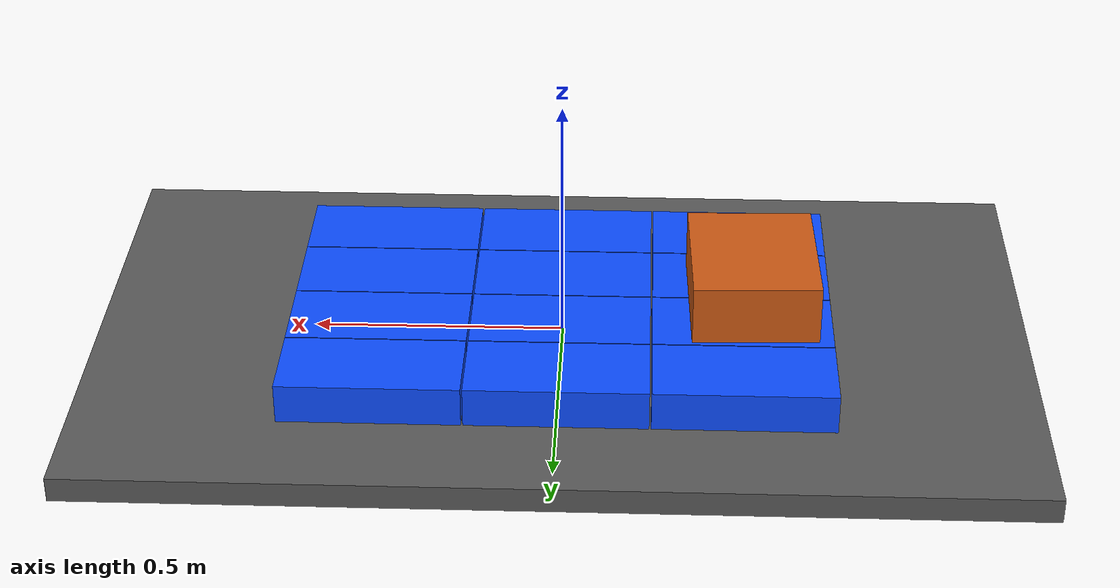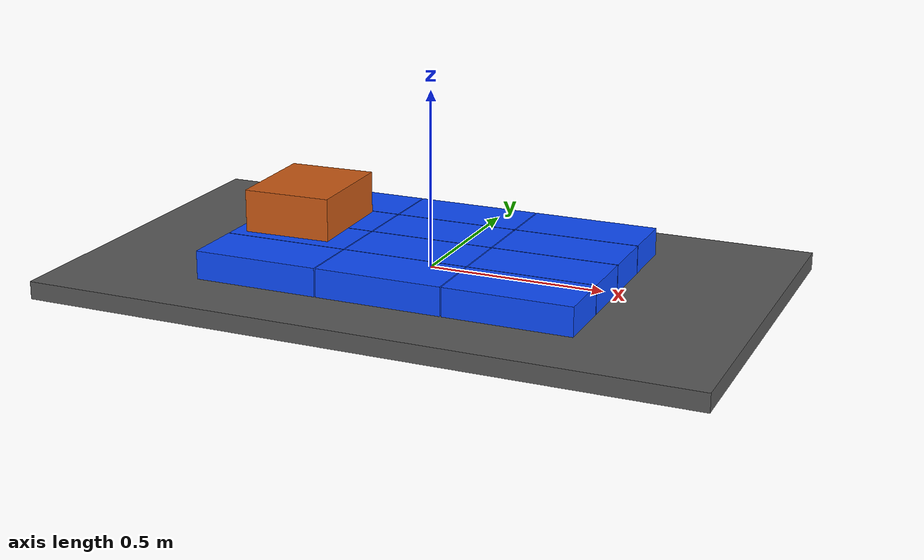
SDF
<?xml version="1.0"?>
<sdf version="1.10">

  <world name="matrix_3x4">

    <gravity>0 0 -9.81</gravity>

    <physics name="physics_1ms" type="ignored">
      <max_step_size>0.001</max_step_size>
      <real_time_factor>1.0</real_time_factor>
      <real_time_update_rate>1000</real_time_update_rate>
    </physics>

    <plugin
      filename="gz-sim-physics-system"
      name="gz::sim::systems::Physics"/>

    <plugin
      filename="gz-sim-user-commands-system"
      name="gz::sim::systems::UserCommands"/>

    <plugin
      filename="gz-sim-scene-broadcaster-system"
      name="gz::sim::systems::SceneBroadcaster"/>

    <light type="directional" name="sun">
      <pose>0 0 5 0 0 0</pose>

      <cast_shadows>true</cast_shadows>

      <diffuse>0.9 0.9 0.9 1</diffuse>
      <specular>0.2 0.2 0.2 1</specular>

      <direction>-0.3 0.2 -1.0</direction>
    </light>

    <model name="platform">
      <static>true</static>

      <pose>0 0 -0.025 0 0 0</pose>

      <link name="platform_link">

        <collision name="platform_collision">
          <geometry>
            <box>
              <size>1.8800000000000001 1.1 0.05</size>
            </box>
          </geometry>
        </collision>

        <visual name="platform_visual">
          <geometry>
            <box>
              <size>1.8800000000000001 1.1 0.05</size>
            </box>
          </geometry>

          <material>
            <ambient>0.22 0.22 0.22 1</ambient>
            <diffuse>0.35 0.35 0.35 1</diffuse>
          </material>
        </visual>

      </link>
    </model>

    <model name="cell_r00_c00">
      <static>true</static>

      <pose>-0.360000 -0.262500 0 0 0 0</pose>

      <link name="belt">
        <pose>0 0 0.040000 0 0 0</pose>

        <collision name="belt_collision">
          <geometry>
            <box>
              <size>
                0.3563 0.17275 0.08
              </size>
            </box>
          </geometry>

          <surface>
            <friction>
              <ode>
                <mu>0.7</mu>
                <mu2>0.7</mu2>
                <fdir1>1 0 0</fdir1>
              </ode>
            </friction>
          </surface>
        </collision>

        <visual name="belt_visual">
          <geometry>
            <box>
              <size>
                0.3563 0.17275 0.08
              </size>
            </box>
          </geometry>

          <material>
            <ambient>0.04 0.18 0.70 1</ambient>
            <diffuse>0.05 0.30 1.00 1</diffuse>
          </material>
        </visual>
      </link>

      <plugin
        filename="gz-sim-track-controller-system"
        name="gz::sim::systems::TrackController">

        <link>belt</link>

        <!-- Положительная скорость направлена вдоль +X -->
        <track_orientation>0 0 0</track_orientation>

        <velocity_topic>
          /singulator/cell/r00_c00/cmd_vel
        </velocity_topic>

        <odometry_topic>
          /singulator/cell/r00_c00/odometry
        </odometry_topic>

        <odometry_publish_frequency>
          20
        </odometry_publish_frequency>

        <min_velocity>-2.0</min_velocity>
        <max_velocity>2.0</max_velocity>

        <min_acceleration>-2.5</min_acceleration>
        <max_acceleration>2.5</max_acceleration>

        <min_jerk>-10.0</min_jerk>
        <max_jerk>10.0</max_jerk>

        <max_command_age>
          2.0
        </max_command_age>
      </plugin>
    </model>

    <model name="cell_r00_c01">
      <static>true</static>

      <pose>-0.360000 -0.087500 0 0 0 0</pose>

      <link name="belt">
        <pose>0 0 0.040000 0 0 0</pose>

        <collision name="belt_collision">
          <geometry>
            <box>
              <size>
                0.3563 0.17275 0.08
              </size>
            </box>
          </geometry>

          <surface>
            <friction>
              <ode>
                <mu>0.7</mu>
                <mu2>0.7</mu2>
                <fdir1>1 0 0</fdir1>
              </ode>
            </friction>
          </surface>
        </collision>

        <visual name="belt_visual">
          <geometry>
            <box>
              <size>
                0.3563 0.17275 0.08
              </size>
            </box>
          </geometry>

          <material>
            <ambient>0.04 0.18 0.70 1</ambient>
            <diffuse>0.05 0.30 1.00 1</diffuse>
          </material>
        </visual>
      </link>

      <plugin
        filename="gz-sim-track-controller-system"
        name="gz::sim::systems::TrackController">

        <link>belt</link>

        <!-- Положительная скорость направлена вдоль +X -->
        <track_orientation>0 0 0</track_orientation>

        <velocity_topic>
          /singulator/cell/r00_c01/cmd_vel
        </velocity_topic>

        <odometry_topic>
          /singulator/cell/r00_c01/odometry
        </odometry_topic>

        <odometry_publish_frequency>
          20
        </odometry_publish_frequency>

        <min_velocity>-2.0</min_velocity>
        <max_velocity>2.0</max_velocity>

        <min_acceleration>-2.5</min_acceleration>
        <max_acceleration>2.5</max_acceleration>

        <min_jerk>-10.0</min_jerk>
        <max_jerk>10.0</max_jerk>

        <max_command_age>
          2.0
        </max_command_age>
      </plugin>
    </model>

    <model name="cell_r00_c02">
      <static>true</static>

      <pose>-0.360000 0.087500 0 0 0 0</pose>

      <link name="belt">
        <pose>0 0 0.040000 0 0 0</pose>

        <collision name="belt_collision">
          <geometry>
            <box>
              <size>
                0.3563 0.17275 0.08
              </size>
            </box>
          </geometry>

          <surface>
            <friction>
              <ode>
                <mu>0.7</mu>
                <mu2>0.7</mu2>
                <fdir1>1 0 0</fdir1>
              </ode>
            </friction>
          </surface>
        </collision>

        <visual name="belt_visual">
          <geometry>
            <box>
              <size>
                0.3563 0.17275 0.08
              </size>
            </box>
          </geometry>

          <material>
            <ambient>0.04 0.18 0.70 1</ambient>
            <diffuse>0.05 0.30 1.00 1</diffuse>
          </material>
        </visual>
      </link>

      <plugin
        filename="gz-sim-track-controller-system"
        name="gz::sim::systems::TrackController">

        <link>belt</link>

        <!-- Положительная скорость направлена вдоль +X -->
        <track_orientation>0 0 0</track_orientation>

        <velocity_topic>
          /singulator/cell/r00_c02/cmd_vel
        </velocity_topic>

        <odometry_topic>
          /singulator/cell/r00_c02/odometry
        </odometry_topic>

        <odometry_publish_frequency>
          20
        </odometry_publish_frequency>

        <min_velocity>-2.0</min_velocity>
        <max_velocity>2.0</max_velocity>

        <min_acceleration>-2.5</min_acceleration>
        <max_acceleration>2.5</max_acceleration>

        <min_jerk>-10.0</min_jerk>
        <max_jerk>10.0</max_jerk>

        <max_command_age>
          2.0
        </max_command_age>
      </plugin>
    </model>

    <model name="cell_r00_c03">
      <static>true</static>

      <pose>-0.360000 0.262500 0 0 0 0</pose>

      <link name="belt">
        <pose>0 0 0.040000 0 0 0</pose>

        <collision name="belt_collision">
          <geometry>
            <box>
              <size>
                0.3563 0.17275 0.08
              </size>
            </box>
          </geometry>

          <surface>
            <friction>
              <ode>
                <mu>0.7</mu>
                <mu2>0.7</mu2>
                <fdir1>1 0 0</fdir1>
              </ode>
            </friction>
          </surface>
        </collision>

        <visual name="belt_visual">
          <geometry>
            <box>
              <size>
                0.3563 0.17275 0.08
              </size>
            </box>
          </geometry>

          <material>
            <ambient>0.04 0.18 0.70 1</ambient>
            <diffuse>0.05 0.30 1.00 1</diffuse>
          </material>
        </visual>
      </link>

      <plugin
        filename="gz-sim-track-controller-system"
        name="gz::sim::systems::TrackController">

        <link>belt</link>

        <!-- Положительная скорость направлена вдоль +X -->
        <track_orientation>0 0 0</track_orientation>

        <velocity_topic>
          /singulator/cell/r00_c03/cmd_vel
        </velocity_topic>

        <odometry_topic>
          /singulator/cell/r00_c03/odometry
        </odometry_topic>

        <odometry_publish_frequency>
          20
        </odometry_publish_frequency>

        <min_velocity>-2.0</min_velocity>
        <max_velocity>2.0</max_velocity>

        <min_acceleration>-2.5</min_acceleration>
        <max_acceleration>2.5</max_acceleration>

        <min_jerk>-10.0</min_jerk>
        <max_jerk>10.0</max_jerk>

        <max_command_age>
          2.0
        </max_command_age>
      </plugin>
    </model>

    <model name="cell_r01_c00">
      <static>true</static>

      <pose>0.000000 -0.262500 0 0 0 0</pose>

      <link name="belt">
        <pose>0 0 0.040000 0 0 0</pose>

        <collision name="belt_collision">
          <geometry>
            <box>
              <size>
                0.3563 0.17275 0.08
              </size>
            </box>
          </geometry>

          <surface>
            <friction>
              <ode>
                <mu>0.7</mu>
                <mu2>0.7</mu2>
                <fdir1>1 0 0</fdir1>
              </ode>
            </friction>
          </surface>
        </collision>

        <visual name="belt_visual">
          <geometry>
            <box>
              <size>
                0.3563 0.17275 0.08
              </size>
            </box>
          </geometry>

          <material>
            <ambient>0.04 0.18 0.70 1</ambient>
            <diffuse>0.05 0.30 1.00 1</diffuse>
          </material>
        </visual>
      </link>

      <plugin
        filename="gz-sim-track-controller-system"
        name="gz::sim::systems::TrackController">

        <link>belt</link>

        <!-- Положительная скорость направлена вдоль +X -->
        <track_orientation>0 0 0</track_orientation>

        <velocity_topic>
          /singulator/cell/r01_c00/cmd_vel
        </velocity_topic>

        <odometry_topic>
          /singulator/cell/r01_c00/odometry
        </odometry_topic>

        <odometry_publish_frequency>
          20
        </odometry_publish_frequency>

        <min_velocity>-2.0</min_velocity>
        <max_velocity>2.0</max_velocity>

        <min_acceleration>-2.5</min_acceleration>
        <max_acceleration>2.5</max_acceleration>

        <min_jerk>-10.0</min_jerk>
        <max_jerk>10.0</max_jerk>

        <max_command_age>
          2.0
        </max_command_age>
      </plugin>
    </model>

    <model name="cell_r01_c01">
      <static>true</static>

      <pose>0.000000 -0.087500 0 0 0 0</pose>

      <link name="belt">
        <pose>0 0 0.040000 0 0 0</pose>

        <collision name="belt_collision">
          <geometry>
            <box>
              <size>
                0.3563 0.17275 0.08
              </size>
            </box>
          </geometry>

          <surface>
            <friction>
              <ode>
                <mu>0.7</mu>
                <mu2>0.7</mu2>
                <fdir1>1 0 0</fdir1>
              </ode>
            </friction>
          </surface>
        </collision>

        <visual name="belt_visual">
          <geometry>
            <box>
              <size>
                0.3563 0.17275 0.08
              </size>
            </box>
          </geometry>

          <material>
            <ambient>0.04 0.18 0.70 1</ambient>
            <diffuse>0.05 0.30 1.00 1</diffuse>
          </material>
        </visual>
      </link>

      <plugin
        filename="gz-sim-track-controller-system"
        name="gz::sim::systems::TrackController">

        <link>belt</link>

        <!-- Положительная скорость направлена вдоль +X -->
        <track_orientation>0 0 0</track_orientation>

        <velocity_topic>
          /singulator/cell/r01_c01/cmd_vel
        </velocity_topic>

        <odometry_topic>
          /singulator/cell/r01_c01/odometry
        </odometry_topic>

        <odometry_publish_frequency>
          20
        </odometry_publish_frequency>

        <min_velocity>-2.0</min_velocity>
        <max_velocity>2.0</max_velocity>

        <min_acceleration>-2.5</min_acceleration>
        <max_acceleration>2.5</max_acceleration>

        <min_jerk>-10.0</min_jerk>
        <max_jerk>10.0</max_jerk>

        <max_command_age>
          2.0
        </max_command_age>
      </plugin>
    </model>

    <model name="cell_r01_c02">
      <static>true</static>

      <pose>0.000000 0.087500 0 0 0 0</pose>

      <link name="belt">
        <pose>0 0 0.040000 0 0 0</pose>

        <collision name="belt_collision">
          <geometry>
            <box>
              <size>
                0.3563 0.17275 0.08
              </size>
            </box>
          </geometry>

          <surface>
            <friction>
              <ode>
                <mu>0.7</mu>
                <mu2>0.7</mu2>
                <fdir1>1 0 0</fdir1>
              </ode>
            </friction>
          </surface>
        </collision>

        <visual name="belt_visual">
          <geometry>
            <box>
              <size>
                0.3563 0.17275 0.08
              </size>
            </box>
          </geometry>

          <material>
            <ambient>0.04 0.18 0.70 1</ambient>
            <diffuse>0.05 0.30 1.00 1</diffuse>
          </material>
        </visual>
      </link>

      <plugin
        filename="gz-sim-track-controller-system"
        name="gz::sim::systems::TrackController">

        <link>belt</link>

        <!-- Положительная скорость направлена вдоль +X -->
        <track_orientation>0 0 0</track_orientation>

        <velocity_topic>
          /singulator/cell/r01_c02/cmd_vel
        </velocity_topic>

        <odometry_topic>
          /singulator/cell/r01_c02/odometry
        </odometry_topic>

        <odometry_publish_frequency>
          20
        </odometry_publish_frequency>

        <min_velocity>-2.0</min_velocity>
        <max_velocity>2.0</max_velocity>

        <min_acceleration>-2.5</min_acceleration>
        <max_acceleration>2.5</max_acceleration>

        <min_jerk>-10.0</min_jerk>
        <max_jerk>10.0</max_jerk>

        <max_command_age>
          2.0
        </max_command_age>
      </plugin>
    </model>

    <model name="cell_r01_c03">
      <static>true</static>

      <pose>0.000000 0.262500 0 0 0 0</pose>

      <link name="belt">
        <pose>0 0 0.040000 0 0 0</pose>

        <collision name="belt_collision">
          <geometry>
            <box>
              <size>
                0.3563 0.17275 0.08
              </size>
            </box>
          </geometry>

          <surface>
            <friction>
              <ode>
                <mu>0.7</mu>
                <mu2>0.7</mu2>
                <fdir1>1 0 0</fdir1>
              </ode>
            </friction>
          </surface>
        </collision>

        <visual name="belt_visual">
          <geometry>
            <box>
              <size>
                0.3563 0.17275 0.08
              </size>
            </box>
          </geometry>

          <material>
            <ambient>0.04 0.18 0.70 1</ambient>
            <diffuse>0.05 0.30 1.00 1</diffuse>
          </material>
        </visual>
      </link>

      <plugin
        filename="gz-sim-track-controller-system"
        name="gz::sim::systems::TrackController">

        <link>belt</link>

        <!-- Положительная скорость направлена вдоль +X -->
        <track_orientation>0 0 0</track_orientation>

        <velocity_topic>
          /singulator/cell/r01_c03/cmd_vel
        </velocity_topic>

        <odometry_topic>
          /singulator/cell/r01_c03/odometry
        </odometry_topic>

        <odometry_publish_frequency>
          20
        </odometry_publish_frequency>

        <min_velocity>-2.0</min_velocity>
        <max_velocity>2.0</max_velocity>

        <min_acceleration>-2.5</min_acceleration>
        <max_acceleration>2.5</max_acceleration>

        <min_jerk>-10.0</min_jerk>
        <max_jerk>10.0</max_jerk>

        <max_command_age>
          2.0
        </max_command_age>
      </plugin>
    </model>

    <model name="cell_r02_c00">
      <static>true</static>

      <pose>0.360000 -0.262500 0 0 0 0</pose>

      <link name="belt">
        <pose>0 0 0.040000 0 0 0</pose>

        <collision name="belt_collision">
          <geometry>
            <box>
              <size>
                0.3563 0.17275 0.08
              </size>
            </box>
          </geometry>

          <surface>
            <friction>
              <ode>
                <mu>0.7</mu>
                <mu2>0.7</mu2>
                <fdir1>1 0 0</fdir1>
              </ode>
            </friction>
          </surface>
        </collision>

        <visual name="belt_visual">
          <geometry>
            <box>
              <size>
                0.3563 0.17275 0.08
              </size>
            </box>
          </geometry>

          <material>
            <ambient>0.04 0.18 0.70 1</ambient>
            <diffuse>0.05 0.30 1.00 1</diffuse>
          </material>
        </visual>
      </link>

      <plugin
        filename="gz-sim-track-controller-system"
        name="gz::sim::systems::TrackController">

        <link>belt</link>

        <!-- Положительная скорость направлена вдоль +X -->
        <track_orientation>0 0 0</track_orientation>

        <velocity_topic>
          /singulator/cell/r02_c00/cmd_vel
        </velocity_topic>

        <odometry_topic>
          /singulator/cell/r02_c00/odometry
        </odometry_topic>

        <odometry_publish_frequency>
          20
        </odometry_publish_frequency>

        <min_velocity>-2.0</min_velocity>
        <max_velocity>2.0</max_velocity>

        <min_acceleration>-2.5</min_acceleration>
        <max_acceleration>2.5</max_acceleration>

        <min_jerk>-10.0</min_jerk>
        <max_jerk>10.0</max_jerk>

        <max_command_age>
          2.0
        </max_command_age>
      </plugin>
    </model>

    <model name="cell_r02_c01">
      <static>true</static>

      <pose>0.360000 -0.087500 0 0 0 0</pose>

      <link name="belt">
        <pose>0 0 0.040000 0 0 0</pose>

        <collision name="belt_collision">
          <geometry>
            <box>
              <size>
                0.3563 0.17275 0.08
              </size>
            </box>
          </geometry>

          <surface>
            <friction>
              <ode>
                <mu>0.7</mu>
                <mu2>0.7</mu2>
                <fdir1>1 0 0</fdir1>
              </ode>
            </friction>
          </surface>
        </collision>

        <visual name="belt_visual">
          <geometry>
            <box>
              <size>
                0.3563 0.17275 0.08
              </size>
            </box>
          </geometry>

          <material>
            <ambient>0.04 0.18 0.70 1</ambient>
            <diffuse>0.05 0.30 1.00 1</diffuse>
          </material>
        </visual>
      </link>

      <plugin
        filename="gz-sim-track-controller-system"
        name="gz::sim::systems::TrackController">

        <link>belt</link>

        <!-- Положительная скорость направлена вдоль +X -->
        <track_orientation>0 0 0</track_orientation>

        <velocity_topic>
          /singulator/cell/r02_c01/cmd_vel
        </velocity_topic>

        <odometry_topic>
          /singulator/cell/r02_c01/odometry
        </odometry_topic>

        <odometry_publish_frequency>
          20
        </odometry_publish_frequency>

        <min_velocity>-2.0</min_velocity>
        <max_velocity>2.0</max_velocity>

        <min_acceleration>-2.5</min_acceleration>
        <max_acceleration>2.5</max_acceleration>

        <min_jerk>-10.0</min_jerk>
        <max_jerk>10.0</max_jerk>

        <max_command_age>
          2.0
        </max_command_age>
      </plugin>
    </model>

    <model name="cell_r02_c02">
      <static>true</static>

      <pose>0.360000 0.087500 0 0 0 0</pose>

      <link name="belt">
        <pose>0 0 0.040000 0 0 0</pose>

        <collision name="belt_collision">
          <geometry>
            <box>
              <size>
                0.3563 0.17275 0.08
              </size>
            </box>
          </geometry>

          <surface>
            <friction>
              <ode>
                <mu>0.7</mu>
                <mu2>0.7</mu2>
                <fdir1>1 0 0</fdir1>
              </ode>
            </friction>
          </surface>
        </collision>

        <visual name="belt_visual">
          <geometry>
            <box>
              <size>
                0.3563 0.17275 0.08
              </size>
            </box>
          </geometry>

          <material>
            <ambient>0.04 0.18 0.70 1</ambient>
            <diffuse>0.05 0.30 1.00 1</diffuse>
          </material>
        </visual>
      </link>

      <plugin
        filename="gz-sim-track-controller-system"
        name="gz::sim::systems::TrackController">

        <link>belt</link>

        <!-- Положительная скорость направлена вдоль +X -->
        <track_orientation>0 0 0</track_orientation>

        <velocity_topic>
          /singulator/cell/r02_c02/cmd_vel
        </velocity_topic>

        <odometry_topic>
          /singulator/cell/r02_c02/odometry
        </odometry_topic>

        <odometry_publish_frequency>
          20
        </odometry_publish_frequency>

        <min_velocity>-2.0</min_velocity>
        <max_velocity>2.0</max_velocity>

        <min_acceleration>-2.5</min_acceleration>
        <max_acceleration>2.5</max_acceleration>

        <min_jerk>-10.0</min_jerk>
        <max_jerk>10.0</max_jerk>

        <max_command_age>
          2.0
        </max_command_age>
      </plugin>
    </model>

    <model name="cell_r02_c03">
      <static>true</static>

      <pose>0.360000 0.262500 0 0 0 0</pose>

      <link name="belt">
        <pose>0 0 0.040000 0 0 0</pose>

        <collision name="belt_collision">
          <geometry>
            <box>
              <size>
                0.3563 0.17275 0.08
              </size>
            </box>
          </geometry>

          <surface>
            <friction>
              <ode>
                <mu>0.7</mu>
                <mu2>0.7</mu2>
                <fdir1>1 0 0</fdir1>
              </ode>
            </friction>
          </surface>
        </collision>

        <visual name="belt_visual">
          <geometry>
            <box>
              <size>
                0.3563 0.17275 0.08
              </size>
            </box>
          </geometry>

          <material>
            <ambient>0.04 0.18 0.70 1</ambient>
            <diffuse>0.05 0.30 1.00 1</diffuse>
          </material>
        </visual>
      </link>

      <plugin
        filename="gz-sim-track-controller-system"
        name="gz::sim::systems::TrackController">

        <link>belt</link>

        <!-- Положительная скорость направлена вдоль +X -->
        <track_orientation>0 0 0</track_orientation>

        <velocity_topic>
          /singulator/cell/r02_c03/cmd_vel
        </velocity_topic>

        <odometry_topic>
          /singulator/cell/r02_c03/odometry
        </odometry_topic>

        <odometry_publish_frequency>
          20
        </odometry_publish_frequency>

        <min_velocity>-2.0</min_velocity>
        <max_velocity>2.0</max_velocity>

        <min_acceleration>-2.5</min_acceleration>
        <max_acceleration>2.5</max_acceleration>

        <min_jerk>-10.0</min_jerk>
        <max_jerk>10.0</max_jerk>

        <max_command_age>
          2.0
        </max_command_age>
      </plugin>
    </model>

    <model name="test_box">

      <pose>
        -0.380000 0.012000 0.14 0 0 0.03
      </pose>

      <allow_auto_disable>true</allow_auto_disable>

      <link name="base_link">

        <inertial>
          <mass>1.5</mass>

          <inertia>
            <ixx>0.01305</ixx>
            <ixy>0</ixy>
            <ixz>0</ixz>

            <iyy>0.0096125</iyy>
            <iyz>0</iyz>

            <izz>0.0190625</izz>
          </inertia>
        </inertial>

        <collision name="box_collision">
          <geometry>
            <box>
              <size>0.25 0.30 0.12</size>
            </box>
          </geometry>

          <surface>
            <friction>
              <ode>
                <mu>0.7</mu>
                <mu2>0.7</mu2>
              </ode>
            </friction>
          </surface>
        </collision>

        <visual name="box_visual">
          <geometry>
            <box>
              <size>0.25 0.30 0.12</size>
            </box>
          </geometry>

          <material>
            <ambient>0.55 0.22 0.06 1</ambient>
            <diffuse>0.80 0.35 0.08 1</diffuse>
          </material>
        </visual>

      </link>
    </model>

    <gui fullscreen="0">

      <plugin filename="MinimalScene" name="3D View">

        <gz-gui>
          <title>3D View</title>

          <property
            type="bool"
            key="showTitleBar">
            false
          </property>

          <property
            type="string"
            key="state">
            docked
          </property>
        </gz-gui>

        <engine>ogre2</engine>
        <scene>scene</scene>

        <ambient_light>0.6 0.6 0.6</ambient_light>
        <background_color>0.8 0.8 0.8</background_color>

        <camera_pose>
          -1.8 0 1.6 0 0.65 0
        </camera_pose>

      </plugin>

      <plugin
        filename="GzSceneManager"
        name="Scene Manager">

        <gz-gui>
          <property key="resizable" type="bool">
            false
          </property>

          <property key="width" type="double">
            5
          </property>

          <property key="height" type="double">
            5
          </property>

          <property key="state" type="string">
            floating
          </property>

          <property key="showTitleBar" type="bool">
            false
          </property>
        </gz-gui>

      </plugin>

      <plugin filename="EntityTree" name="Entity tree"/>
      <plugin filename="WorldControl" name="World control"/>
      <plugin filename="WorldStats" name="World stats"/>

    </gui>

  </world>

</sdf>
